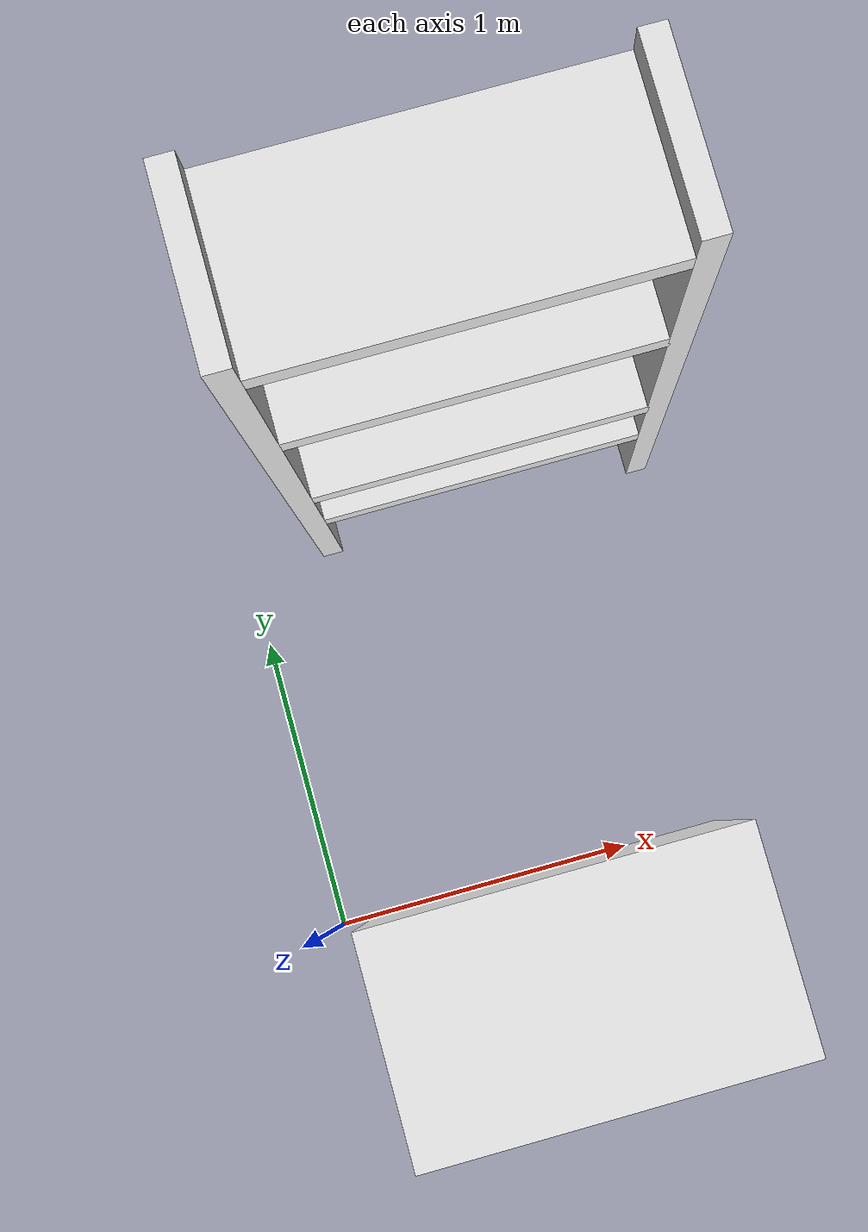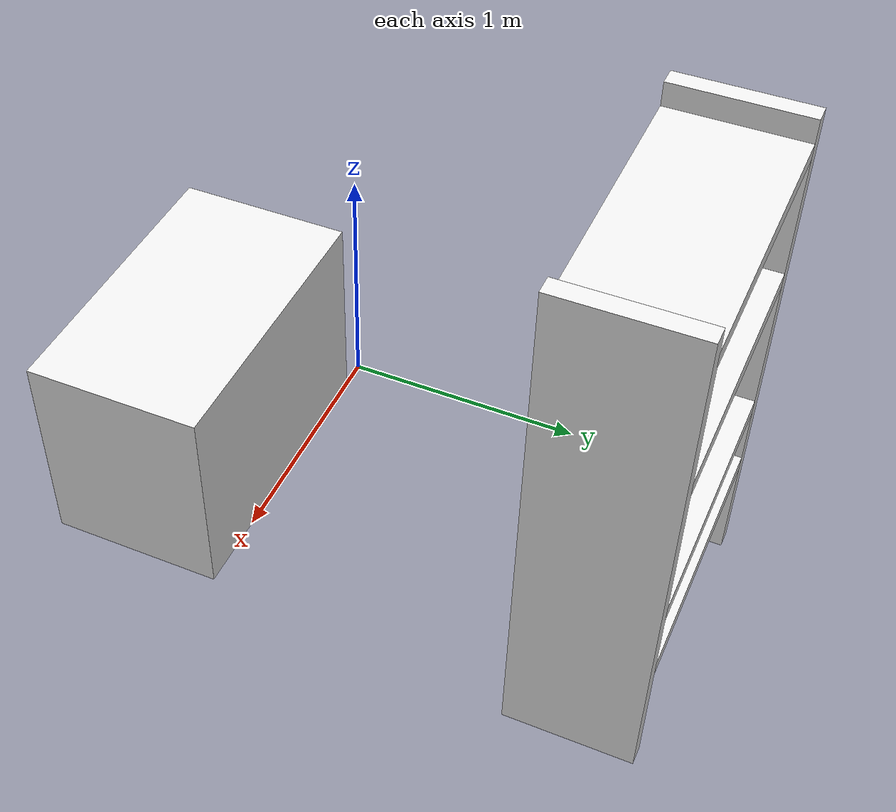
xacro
<?xml version="1.0" ?>

<robot name="robostore_env" xmlns:xacro="http://ros.org/wiki/xacro">

  <xacro:include filename="$(find robostore_bringup)/urdf/materials.xacro" />
  <xacro:include filename="$(find robostore_bringup)/urdf/table.urdf.xacro" />
  <xacro:include filename="$(find robostore_bringup)/urdf/rack.urdf.xacro" />

  <xacro:arg name="to_be_done" default="false"/>

  <link name="map"/>

  <xacro:table name="table" id="1" parent="map">
    <origin xyz="1.32 0 0" rpy="0 0 3.14159265359"/>
  </xacro:table>

  <xacro:rack name="rack" id="1" parent="map">
    <origin xyz="0.26 1.255 0" rpy="0 0 0"/>
  </xacro:rack>

</robot>

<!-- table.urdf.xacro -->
<robot name="table" xmlns:xacro="http://ros.org/wiki/xacro">

  <xacro:include filename="$(find robostore_bringup)/urdf/place_location.urdf.xacro" />

  <xacro:macro name="table" params="name id parent *origin">

    <xacro:property name="table_width" value="1.2"/>
    <xacro:property name="table_depth" value="0.7"/>
    <xacro:property name="table_height" value="0.85"/>

    <joint name="${name}_${id}_joint" type="fixed">
      <joint_properties damping="1" friction="1" />
      <xacro:insert_block name="origin" />
      <parent link="${parent}"/>
      <child link="${name}_${id}_base_link"/>
    </joint>

    <link name="table_${id}_base_link">
      <visual>
        <origin xyz="${table_width/2} ${table_depth/2} ${table_height/2}" rpy="0 0 0"/>
        <geometry>
          <box size="${table_width} ${table_depth} ${table_height}"/>
        </geometry>
        <material name="white"/>
      </visual>

      <collision>
        <origin xyz="${table_width/2} ${table_depth/2} ${table_height/2}" rpy="0 0 0"/>
        <geometry>
          <box size="${table_width} ${table_depth} ${table_height}"/>
        </geometry>
      </collision>
    </link>

    <xacro:place_location parent="${name}_${id}_base_link" prefix="${name}_${id}" index="1">
      <origin xyz="0.4 0.15 ${table_height}" rpy="0 0 0"/>
    </xacro:place_location>

    <xacro:place_location parent="${name}_${id}_base_link" prefix="${name}_${id}" index="2">
      <origin xyz="0.5 0.15 ${table_height}" rpy="0 0 0"/>
    </xacro:place_location>

    <xacro:place_location parent="${name}_${id}_base_link" prefix="${name}_${id}" index="3">
      <origin xyz="0.6 0.15 ${table_height}" rpy="0 0 0"/>
    </xacro:place_location>

    <xacro:place_location parent="${name}_${id}_base_link" prefix="${name}_${id}" index="4">
      <origin xyz="0.4 0.05 ${table_height}" rpy="0 0 0"/>
    </xacro:place_location>

    <xacro:place_location parent="${name}_${id}_base_link" prefix="${name}_${id}" index="5">
      <origin xyz="0.5 0.05 ${table_height}" rpy="0 0 0"/>
    </xacro:place_location>

    <xacro:place_location parent="${name}_${id}_base_link" prefix="${name}_${id}" index="6">
      <origin xyz="0.6 0.05 ${table_height}" rpy="0 0 0"/>
    </xacro:place_location>
  </xacro:macro>

</robot>

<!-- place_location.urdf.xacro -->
<robot name="place_location" xmlns:xacro="http://ros.org/wiki/xacro">

  <xacro:macro name="place_location" params="parent prefix index *origin">

    <joint name="${prefix}_place_${index}_joint" type="fixed">
      <parent link="${parent}" />
      <child link="${prefix}_place_${index}_link" />
      <xacro:insert_block name="origin" />
    </joint>

    <link name="${prefix}_place_${index}_link" />

  </xacro:macro>

</robot>

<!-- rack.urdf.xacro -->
<robot name="rack" xmlns:xacro="http://ros.org/wiki/xacro">

  <xacro:include filename="$(find robostore_bringup)/urdf/shelf.urdf.xacro" />

  <xacro:macro name="rack" params="name id parent *origin">

    <xacro:property name="stand_width" value="0.07"/>
    <xacro:property name="stand_depth" value="0.5"/>
    <xacro:property name="stand_height" value="2.025"/>

    <xacro:property name="stand_distance" value="1.105"/>

    <joint name="${name}_${id}_base_joint" type="fixed">
      <joint_properties damping="1" friction="1" />
      <xacro:insert_block name="origin" />
      <parent link="${parent}" />
      <child link="${name}_${id}_base_link" />
    </joint>

    <link name="${name}_${id}_base_link" />

    <joint name="stand_a_joint" type="fixed">
      <parent link="${name}_${id}_base_link" />
      <child link="stand_a_link" />
      <origin xyz="0 0 0" rpy="0 0 0" />
    </joint>

    <link name="stand_a_link">
      <visual>
        <origin xyz="${stand_width/2} ${stand_depth/2} ${stand_height/2}" rpy="0 0 0" />
        <geometry>
          <box size="${stand_width} ${stand_depth} ${stand_height}"/>
        </geometry>
        <material name="white"/>
      </visual>
      <collision>
        <origin xyz="${stand_width/2} ${stand_depth/2} ${stand_height/2}" rpy="0 0 0" />
        <geometry>
          <box size="${stand_width} ${stand_depth} ${stand_height}"/>
        </geometry>
      </collision>
    </link>

    <joint name="stand_b_joint" type="fixed">
      <parent link="stand_a_link" />
      <child link="stand_b_link" />
      <origin xyz="${stand_distance} 0 0" rpy="0 0 0"/>
    </joint>

    <link name="stand_b_link">
      <visual>
        <origin xyz="${stand_width/2} ${stand_depth/2} ${stand_height/2}" rpy="0 0 0" />
        <geometry>
          <box size="${stand_width} ${stand_depth} ${stand_height}"/>
        </geometry>
        <material name="white"/>
      </visual>
      <collision>
        <origin xyz="${stand_width/2} ${stand_depth/2} ${stand_height/2}" rpy="0 0 0" />
        <geometry>
          <box size="${stand_width} ${stand_depth} ${stand_height}"/>
        </geometry>
      </collision>
    </link>

    <xacro:shelf parent="${name}_${id}_base_link" prefix="${name}_${id}" level="1" stand_width="${stand_width}" height="0.452">
      <origin xyz="0 0 0" rpy="0 0 0"/>
    </xacro:shelf>

    <xacro:shelf parent="${name}_${id}_base_link" prefix="${name}_${id}" level="2" stand_width="${stand_width}" height="0.751">
      <origin xyz="0 0 0" rpy="0 0 0"/>
    </xacro:shelf>

    <xacro:shelf parent="${name}_${id}_base_link" prefix="${name}_${id}" level="3" stand_width="${stand_width}" height="1.351">
      <origin xyz="0 0 0" rpy="0 0 0"/>
    </xacro:shelf>

    <xacro:shelf parent="${name}_${id}_base_link" prefix="${name}_${id}" level="4" stand_width="${stand_width}" height="1.875">
      <origin xyz="0 0 0" rpy="0 0 0"/>
    </xacro:shelf>

  </xacro:macro>

</robot>

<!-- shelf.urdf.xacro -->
<robot name="shelf" xmlns:xacro="http://ros.org/wiki/xacro">

  <xacro:macro name="shelf" params="parent prefix level stand_width height *origin">

    <xacro:property name="shelf_length" value="1.04"/>
    <xacro:property name="shelf_width" value="0.5"/>
    <xacro:property name="shelf_height" value="0.06"/>

    <joint name="${prefix}_shelf_${level}_joint" type="fixed">
      <parent link="${parent}" />
      <child link="${prefix}_shelf_${level}_link" />
      <origin xyz="${stand_width} 0 ${height}" rpy="0 0 0" />
    </joint>

    <link name="${prefix}_shelf_${level}_link">
      <visual>
        <origin xyz="${shelf_length/2} ${shelf_width/2} ${shelf_height/2}" rpy="0 0 0" />
        <geometry>
          <box size="${shelf_length} ${shelf_width} ${shelf_height}"/>
        </geometry>
        <material name="white"/>
      </visual>
      <collision>
        <origin xyz="${shelf_length/2} ${shelf_width/2} ${shelf_height/2}" rpy="0 0 0" />
        <geometry>
          <box size="${shelf_length} ${shelf_width} ${shelf_height}"/>
        </geometry>
      </collision>
    </link>

    <joint name="${prefix}_shelf_${level}_flat_joint" type="fixed">
      <parent link="${prefix}_shelf_${level}_link" />
      <child link="${prefix}_shelf_${level}_flat_link" />
      <origin xyz="0 0 ${shelf_height}" rpy="0 0 0" />
    </joint>

    <link name="${prefix}_shelf_${level}_flat_link" />

  </xacro:macro>

</robot>
